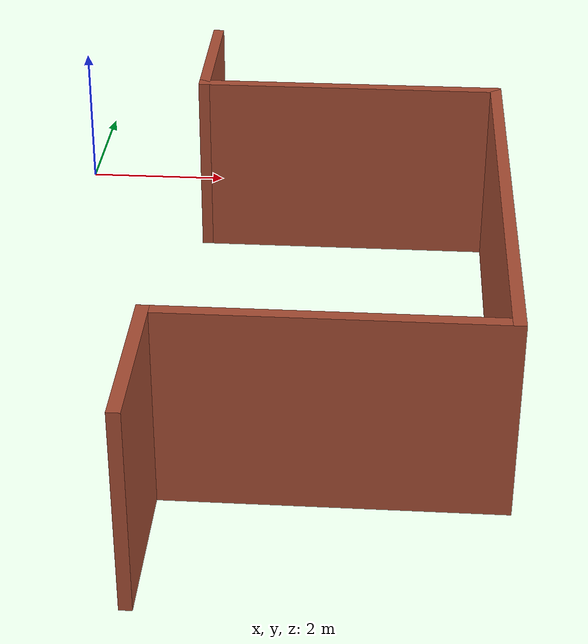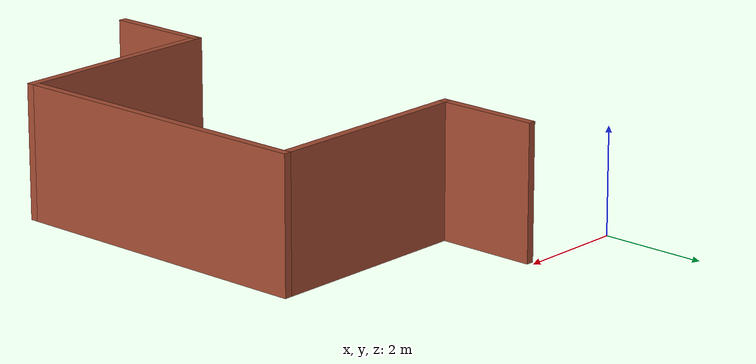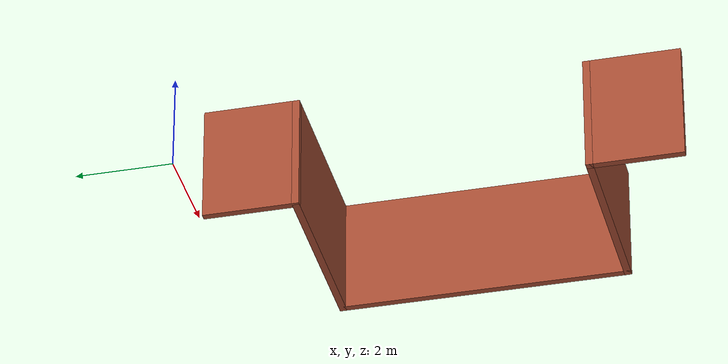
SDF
<?xml version='1.0'?>
<sdf version='1.7'>
  <model name='new_farm'>
    <pose>3.0375 -4.9625 0 0 -0 0</pose>
    <link name='Wall_15'>
      <collision name='Wall_15_Collision'>
        <geometry>
          <box>
            <size>4.15 0.15 2.5</size>
          </box>
        </geometry>
        <pose>0 0 1.25 0 -0 0</pose>
      </collision>
      <visual name='Wall_15_Visual'>
        <pose>0 0 1.25 0 -0 0</pose>
        <geometry>
          <box>
            <size>4.15 0.15 2.5</size>
          </box>
        </geometry>
        <material>
          <script>
            <uri>file://media/materials/scripts/gazebo.material</uri>
            <name>Gazebo/Bricks</name>
          </script>
          <ambient>1 1 1 1</ambient>
        </material>
        <meta>
          <layer>0</layer>
        </meta>
      </visual>
      <pose>0.9625 2.9625 0 0 -0 3.14159</pose>
    </link>
    <link name='Wall_19'>
      <collision name='Wall_19_Collision'>
        <geometry>
          <box>
            <size>6.15 0.15 2.5</size>
          </box>
        </geometry>
        <pose>0 0 1.25 0 -0 0</pose>
      </collision>
      <visual name='Wall_19_Visual'>
        <pose>0 0 1.25 0 -0 0</pose>
        <geometry>
          <box>
            <size>6.15 0.15 2.5</size>
          </box>
        </geometry>
        <material>
          <script>
            <uri>file://media/materials/scripts/gazebo.material</uri>
            <name>Gazebo/Bricks</name>
          </script>
          <ambient>1 1 1 1</ambient>
        </material>
        <meta>
          <layer>0</layer>
        </meta>
      </visual>
      <pose>2.9625 -0.0375 0 0 -0 -1.5708</pose>
    </link>
    <link name='Wall_21'>
      <collision name='Wall_21_Collision'>
        <geometry>
          <box>
            <size>4.15 0.15 2.5</size>
          </box>
        </geometry>
        <pose>0 0 1.25 0 -0 0</pose>
      </collision>
      <visual name='Wall_21_Visual'>
        <pose>0 0 1.25 0 -0 0</pose>
        <geometry>
          <box>
            <size>4.15 0.15 2.5</size>
          </box>
        </geometry>
        <material>
          <script>
            <uri>file://media/materials/scripts/gazebo.material</uri>
            <name>Gazebo/Bricks</name>
          </script>
          <ambient>1 1 1 1</ambient>
        </material>
        <meta>
          <layer>0</layer>
        </meta>
      </visual>
      <pose>0.9625 -3.0375 0 0 -0 3.14159</pose>
    </link>
    <link name='Wall_24'>
      <collision name='Wall_24_Collision'>
        <geometry>
          <box>
            <size>2 0.15 2.5</size>
          </box>
        </geometry>
        <pose>0 0 1.25 0 -0 0</pose>
      </collision>
      <visual name='Wall_24_Visual'>
        <pose>0 0 1.25 0 -0 0</pose>
        <geometry>
          <box>
            <size>2 0.15 2.5</size>
          </box>
        </geometry>
        <material>
          <script>
            <uri>file://media/materials/scripts/gazebo.material</uri>
            <name>Gazebo/Bricks</name>
          </script>
          <ambient>1 1 1 1</ambient>
        </material>
        <meta>
          <layer>0</layer>
        </meta>
      </visual>
      <pose>-1.0375 3.8875 0 0 -0 1.5708</pose>
    </link>
    <link name='Wall_33'>
      <collision name='Wall_33_Collision'>
        <geometry>
          <box>
            <size>2 0.15 2.5</size>
          </box>
        </geometry>
        <pose>0 0 1.25 0 -0 0</pose>
      </collision>
      <visual name='Wall_33_Visual'>
        <pose>0 0 1.25 0 -0 0</pose>
        <geometry>
          <box>
            <size>2 0.15 2.5</size>
          </box>
        </geometry>
        <material>
          <script>
            <uri>file://media/materials/scripts/gazebo.material</uri>
            <name>Gazebo/Bricks</name>
          </script>
          <ambient>1 1 1 1</ambient>
        </material>
        <meta>
          <layer>0</layer>
        </meta>
      </visual>
      <pose>-1.0375 -3.9625 0 0 -0 -1.5708</pose>
    </link>
    <static>1</static>
  </model>
</sdf>
